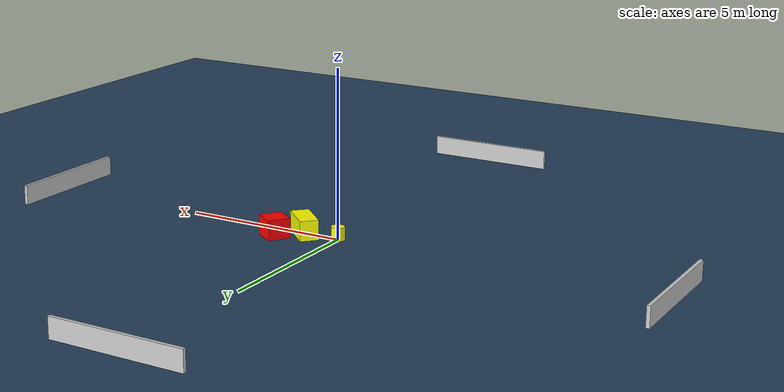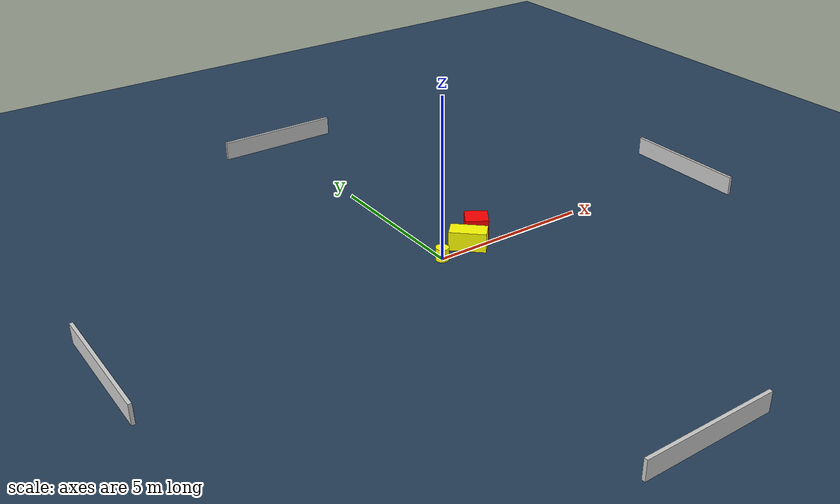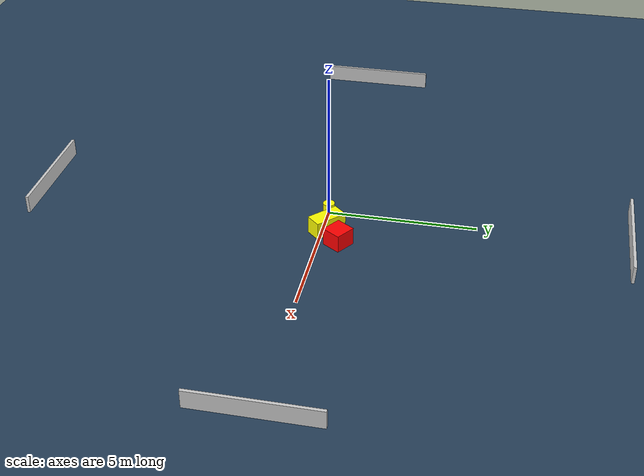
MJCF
<?xml version="1.0" ?>
<mujoco model="generated_environment">
  <option timestep="0.01" integrator="RK4" cone="elliptic"/>
  <default>
    <geom density="1"/>
  </default>
  <asset>
    <texture builtin="gradient" height="3072" name="skybox" rgb1="0.3 0.5 0.7" rgb2="0 0 0" type="skybox" width="512"/>
    <texture builtin="checker" height="300" name="groundplane" rgb1="0.2 0.3 0.4" rgb2="0.1 0.2 0.3" type="2d" width="300"/>
    <material name="groundplane" reflectance="0.2" texrepeat="5 5" texture="groundplane"/>
  </asset>
  <worldbody>
    <light dir="0 0 -1" directional="true" pos="0 0 1.5"/>
    <geom condim="3" friction="0.5 0.005 0.001" material="groundplane" name="floor" pos="0 0 0" size="0 0 0.05" type="plane"/>
    <body name="walls">
      <geom name="wall_1" condim="4" pos="-10.0 0.0 0.3" rgba="0.800000011920929 0.800000011920929 0.800000011920929 1.0" size="0.05 2.0 0.3" type="box"/>
      <geom name="wall_2" condim="4" pos="10.0 0.0 0.3" rgba="0.800000011920929 0.800000011920929 0.800000011920929 1.0" size="0.05 2.0 0.3" type="box"/>
      <geom name="wall_3" condim="4" pos="0.0 -10.0 0.3" rgba="0.800000011920929 0.800000011920929 0.800000011920929 1.0" size="2.0 0.05 0.3" type="box"/>
      <geom name="wall_4" condim="4" pos="0.0 10.0 0.3" rgba="0.800000011920929 0.800000011920929 0.800000011920929 1.0" size="2.0 0.05 0.3" type="box"/>
    </body>
    <body name="robot">
      <joint name="joint_x" type="slide" pos="0 0 0" axis="1 0 0"/>
      <joint name="joint_y" type="slide" pos="0 0 0" axis="0 1 0"/>
      <geom name="robot" type="cylinder" pos="0.0 0.0 0.2" size="0.2 0.2 0.0" mass="5.0" friction="1.0 0.005 0.0001" condim="4" rgba="1.0 1.0 0.0 1.0"/>
    </body>
    <body name="obstacle_1_movable">
      <geom name="obstacle_1_movable" condim="4" pos="1.0416533104591754 0.13971267441071097 0.3" euler="0 0 46.83900512043865" friction="0.0 0.005 0.001" rgba="1.0 1.0 0.0 1.0" size="0.2795875462604731 0.5569706642355863 0.3" type="box" mass="0.1"/>
      <joint type="free"/>
    </body>
    <body name="obstacle_2_static">
      <geom name="obstacle_2_static" condim="4" pos="1.728605597113653 0.6596513381644878 0.3" euler="0 0 236.42903555271462" friction="0.0 0.005 0.001" rgba="1.0 0.0 0.0 1.0" size="0.3392272521585178 0.3536455756587342 0.3" type="box"/>
    </body>
  </worldbody>
  <actuator>
    <motor name="actuator_x" joint="joint_x" gear="1" ctrlrange="-1 1"/>
    <motor name="actuator_y" joint="joint_y" gear="1" ctrlrange="-1 1"/>
  </actuator>
</mujoco>
